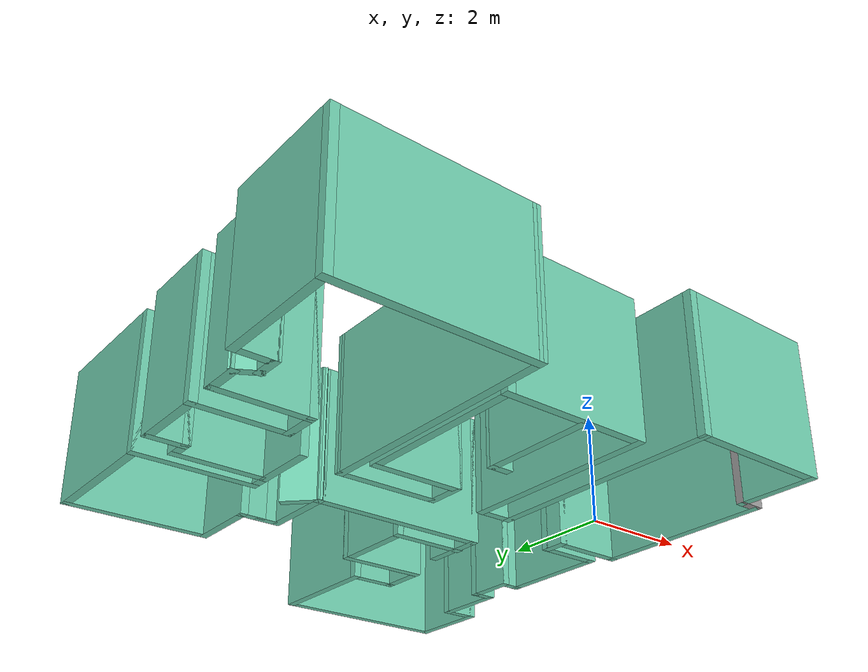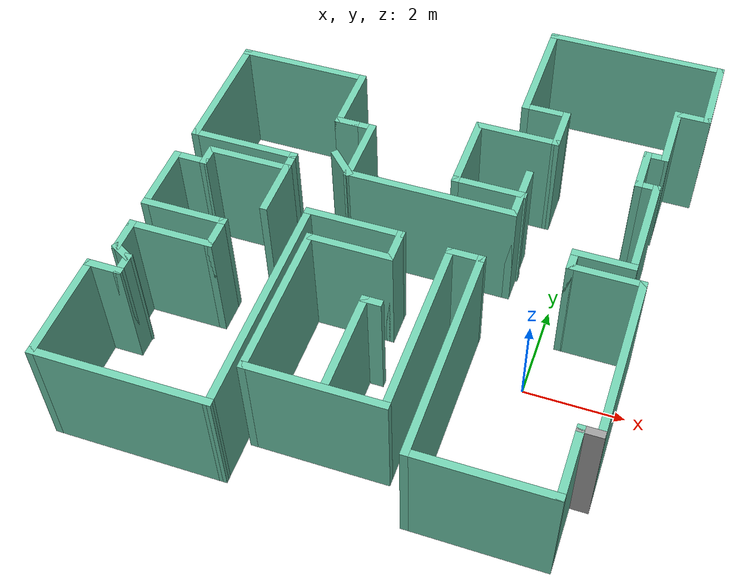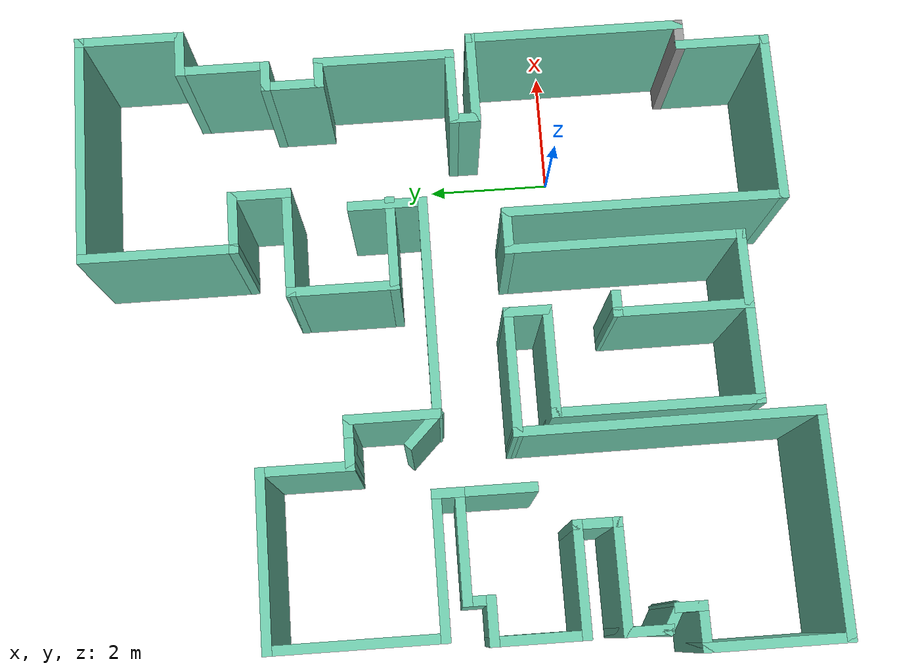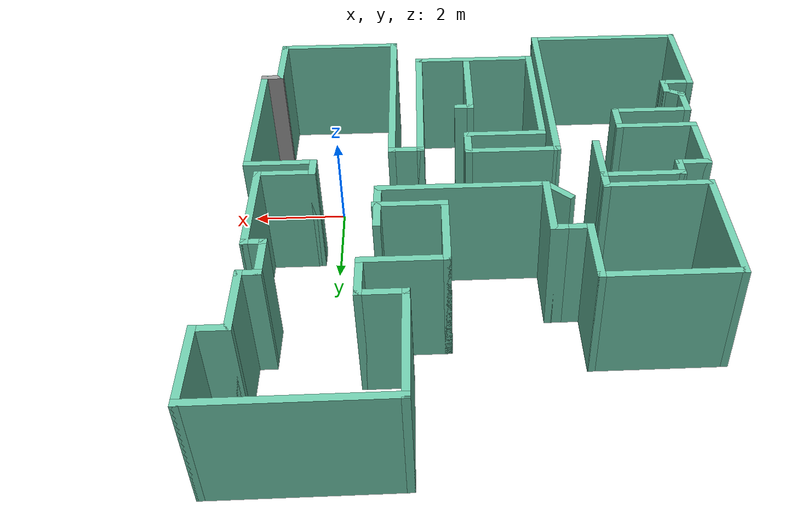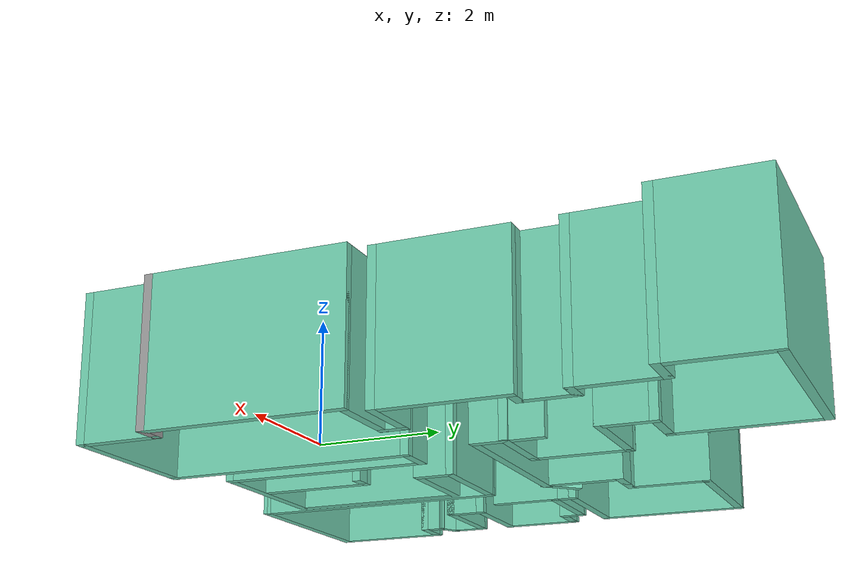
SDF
<?xml version='1.0'?>
<sdf version='1.6'>
  <model name='map_22'>
    <pose frame=''>-2.9551 1.9617 0 0 -0 0</pose>
    <link name='Wall_0'>
      <collision name='Wall_0_Collision'>
        <geometry>
          <box>
            <size>3.5 0.15 2.5</size>
          </box>
        </geometry>
        <pose frame=''>0 0 1.25 0 -0 0</pose>
      </collision>
      <visual name='Wall_0_Visual'>
        <pose frame=''>0 0 1.25 0 -0 0</pose>
        <geometry>
          <box>
            <size>3.5 0.15 2.5</size>
          </box>
        </geometry>
        <material>
          <script>
            <uri>file://media/materials/scripts/gazebo.material</uri>
            <name>Gazebo/Grey</name>
          </script>
          <ambient>0.435294 0.796078 0.67451 1</ambient>
        </material>
        <meta>
          <layer>0</layer>
        </meta>
      </visual>
      <pose frame=''>-3.3677 -5.54294 0 0 -0 3.14159</pose>
    </link>
    <link name='Wall_1'>
      <collision name='Wall_1_Collision'>
        <geometry>
          <box>
            <size>2.25 0.15 2.5</size>
          </box>
        </geometry>
        <pose frame=''>0 0 1.25 0 -0 0</pose>
      </collision>
      <visual name='Wall_1_Visual'>
        <pose frame=''>0 0 1.25 0 -0 0</pose>
        <geometry>
          <box>
            <size>2.25 0.15 2.5</size>
          </box>
        </geometry>
        <material>
          <script>
            <uri>file://media/materials/scripts/gazebo.material</uri>
            <name>Gazebo/Grey</name>
          </script>
          <ambient>0.435294 0.796078 0.67451 1</ambient>
        </material>
        <meta>
          <layer>0</layer>
        </meta>
      </visual>
      <pose frame=''>-5.0427 -4.49294 0 0 -0 1.5708</pose>
    </link>
    <link name='Wall_10'>
      <collision name='Wall_10_Collision'>
        <geometry>
          <box>
            <size>0.75 0.15 2.5</size>
          </box>
        </geometry>
        <pose frame=''>0 0 1.25 0 -0 0</pose>
      </collision>
      <visual name='Wall_10_Visual'>
        <pose frame=''>0 0 1.25 0 -0 0</pose>
        <geometry>
          <box>
            <size>0.75 0.15 2.5</size>
          </box>
        </geometry>
        <material>
          <script>
            <uri>file://media/materials/scripts/gazebo.material</uri>
            <name>Gazebo/Grey</name>
          </script>
          <ambient>0.435294 0.796078 0.67451 1</ambient>
        </material>
        <meta>
          <layer>0</layer>
        </meta>
      </visual>
      <pose frame=''>-4.44581 -0.367941 0 0 -0 0</pose>
    </link>
    <link name='Wall_11'>
      <collision name='Wall_11_Collision'>
        <geometry>
          <box>
            <size>0.5 0.15 2.5</size>
          </box>
        </geometry>
        <pose frame=''>0 0 1.25 0 -0 0</pose>
      </collision>
      <visual name='Wall_11_Visual'>
        <pose frame=''>0 0 1.25 0 -0 0</pose>
        <geometry>
          <box>
            <size>0.5 0.15 2.5</size>
          </box>
        </geometry>
        <material>
          <script>
            <uri>file://media/materials/scripts/gazebo.material</uri>
            <name>Gazebo/Grey</name>
          </script>
          <ambient>0.435294 0.796078 0.67451 1</ambient>
        </material>
        <meta>
          <layer>0</layer>
        </meta>
      </visual>
      <pose frame=''>-4.14581 -0.192941 0 0 -0 1.5708</pose>
    </link>
    <link name='Wall_12'>
      <collision name='Wall_12_Collision'>
        <geometry>
          <box>
            <size>1.75 0.15 2.5</size>
          </box>
        </geometry>
        <pose frame=''>0 0 1.25 0 -0 0</pose>
      </collision>
      <visual name='Wall_12_Visual'>
        <pose frame=''>0 0 1.25 0 -0 0</pose>
        <geometry>
          <box>
            <size>1.75 0.15 2.5</size>
          </box>
        </geometry>
        <material>
          <script>
            <uri>file://media/materials/scripts/gazebo.material</uri>
            <name>Gazebo/Grey</name>
          </script>
          <ambient>0.435294 0.796078 0.67451 1</ambient>
        </material>
        <meta>
          <layer>0</layer>
        </meta>
      </visual>
      <pose frame=''>-3.34581 -0.017941 0 0 -0 0</pose>
    </link>
    <link name='Wall_13'>
      <collision name='Wall_13_Collision'>
        <geometry>
          <box>
            <size>1.25 0.15 2.5</size>
          </box>
        </geometry>
        <pose frame=''>0 0 1.25 0 -0 0</pose>
      </collision>
      <visual name='Wall_13_Visual'>
        <pose frame=''>0 0 1.25 0 -0 0</pose>
        <geometry>
          <box>
            <size>1.25 0.15 2.5</size>
          </box>
        </geometry>
        <material>
          <script>
            <uri>file://media/materials/scripts/gazebo.material</uri>
            <name>Gazebo/Grey</name>
          </script>
          <ambient>0.435294 0.796078 0.67451 1</ambient>
        </material>
        <meta>
          <layer>0</layer>
        </meta>
      </visual>
      <pose frame=''>-2.54581 -0.567941 0 0 -0 -1.5708</pose>
    </link>
    <link name='Wall_15'>
      <collision name='Wall_15_Collision'>
        <geometry>
          <box>
            <size>0.5 0.15 2.5</size>
          </box>
        </geometry>
        <pose frame=''>0 0 1.25 0 -0 0</pose>
      </collision>
      <visual name='Wall_15_Visual'>
        <pose frame=''>0 0 1.25 0 -0 0</pose>
        <geometry>
          <box>
            <size>0.5 0.15 2.5</size>
          </box>
        </geometry>
        <material>
          <script>
            <uri>file://media/materials/scripts/gazebo.material</uri>
            <name>Gazebo/Grey</name>
          </script>
          <ambient>0.435294 0.796078 0.67451 1</ambient>
        </material>
        <meta>
          <layer>0</layer>
        </meta>
      </visual>
      <pose frame=''>-2.54581 0.157059 0 0 -0 1.5708</pose>
    </link>
    <link name='Wall_16'>
      <collision name='Wall_16_Collision'>
        <geometry>
          <box>
            <size>2.25 0.15 2.5</size>
          </box>
        </geometry>
        <pose frame=''>0 0 1.25 0 -0 0</pose>
      </collision>
      <visual name='Wall_16_Visual'>
        <pose frame=''>0 0 1.25 0 -0 0</pose>
        <geometry>
          <box>
            <size>2.25 0.15 2.5</size>
          </box>
        </geometry>
        <material>
          <script>
            <uri>file://media/materials/scripts/gazebo.material</uri>
            <name>Gazebo/Grey</name>
          </script>
          <ambient>0.435294 0.796078 0.67451 1</ambient>
        </material>
        <meta>
          <layer>0</layer>
        </meta>
      </visual>
      <pose frame=''>-3.59581 0.332059 0 0 -0 3.14159</pose>
    </link>
    <link name='Wall_17'>
      <collision name='Wall_17_Collision'>
        <geometry>
          <box>
            <size>2.75 0.15 2.5</size>
          </box>
        </geometry>
        <pose frame=''>0 0 1.25 0 -0 0</pose>
      </collision>
      <visual name='Wall_17_Visual'>
        <pose frame=''>0 0 1.25 0 -0 0</pose>
        <geometry>
          <box>
            <size>2.75 0.15 2.5</size>
          </box>
        </geometry>
        <material>
          <script>
            <uri>file://media/materials/scripts/gazebo.material</uri>
            <name>Gazebo/Grey</name>
          </script>
          <ambient>0.435294 0.796078 0.67451 1</ambient>
        </material>
        <meta>
          <layer>0</layer>
        </meta>
      </visual>
      <pose frame=''>-4.64581 1.63206 0 0 -0 1.5708</pose>
    </link>
    <link name='Wall_18'>
      <collision name='Wall_18_Collision'>
        <geometry>
          <box>
            <size>2.75 0.15 2.5</size>
          </box>
        </geometry>
        <pose frame=''>0 0 1.25 0 -0 0</pose>
      </collision>
      <visual name='Wall_18_Visual'>
        <pose frame=''>0 0 1.25 0 -0 0</pose>
        <geometry>
          <box>
            <size>2.75 0.15 2.5</size>
          </box>
        </geometry>
        <material>
          <script>
            <uri>file://media/materials/scripts/gazebo.material</uri>
            <name>Gazebo/Grey</name>
          </script>
          <ambient>0.435294 0.796078 0.67451 1</ambient>
        </material>
        <meta>
          <layer>0</layer>
        </meta>
      </visual>
      <pose frame=''>-3.34581 2.93206 0 0 -0 0</pose>
    </link>
    <link name='Wall_19'>
      <collision name='Wall_19_Collision'>
        <geometry>
          <box>
            <size>1.5 0.15 2.5</size>
          </box>
        </geometry>
        <pose frame=''>0 0 1.25 0 -0 0</pose>
      </collision>
      <visual name='Wall_19_Visual'>
        <pose frame=''>0 0 1.25 0 -0 0</pose>
        <geometry>
          <box>
            <size>1.5 0.15 2.5</size>
          </box>
        </geometry>
        <material>
          <script>
            <uri>file://media/materials/scripts/gazebo.material</uri>
            <name>Gazebo/Grey</name>
          </script>
          <ambient>0.435294 0.796078 0.67451 1</ambient>
        </material>
        <meta>
          <layer>0</layer>
        </meta>
      </visual>
      <pose frame=''>-2.04581 2.25706 0 0 -0 -1.5708</pose>
    </link>
    <link name='Wall_2'>
      <collision name='Wall_2_Collision'>
        <geometry>
          <box>
            <size>0.75 0.15 2.5</size>
          </box>
        </geometry>
        <pose frame=''>0 0 1.25 0 -0 0</pose>
      </collision>
      <visual name='Wall_2_Visual'>
        <pose frame=''>0 0 1.25 0 -0 0</pose>
        <geometry>
          <box>
            <size>0.75 0.15 2.5</size>
          </box>
        </geometry>
        <material>
          <script>
            <uri>file://media/materials/scripts/gazebo.material</uri>
            <name>Gazebo/Grey</name>
          </script>
          <ambient>0.435294 0.796078 0.67451 1</ambient>
        </material>
        <meta>
          <layer>0</layer>
        </meta>
      </visual>
      <pose frame=''>-4.7427 -3.44294 0 0 -0 0</pose>
    </link>
    <link name='Wall_20'>
      <collision name='Wall_20_Collision'>
        <geometry>
          <box>
            <size>0.5 0.15 2.5</size>
          </box>
        </geometry>
        <pose frame=''>0 0 1.25 0 -0 0</pose>
      </collision>
      <visual name='Wall_20_Visual'>
        <pose frame=''>0 0 1.25 0 -0 0</pose>
        <geometry>
          <box>
            <size>0.5 0.15 2.5</size>
          </box>
        </geometry>
        <material>
          <script>
            <uri>file://media/materials/scripts/gazebo.material</uri>
            <name>Gazebo/Grey</name>
          </script>
          <ambient>0.435294 0.796078 0.67451 1</ambient>
        </material>
        <meta>
          <layer>0</layer>
        </meta>
      </visual>
      <pose frame=''>-1.87081 1.58206 0 0 -0 0</pose>
    </link>
    <link name='Wall_21'>
      <collision name='Wall_21_Collision'>
        <geometry>
          <box>
            <size>0.5 0.15 2.5</size>
          </box>
        </geometry>
        <pose frame=''>0 0 1.25 0 -0 0</pose>
      </collision>
      <visual name='Wall_21_Visual'>
        <pose frame=''>0 0 1.25 0 -0 0</pose>
        <geometry>
          <box>
            <size>0.5 0.15 2.5</size>
          </box>
        </geometry>
        <material>
          <script>
            <uri>file://media/materials/scripts/gazebo.material</uri>
            <name>Gazebo/Grey</name>
          </script>
          <ambient>0.435294 0.796078 0.67451 1</ambient>
        </material>
        <meta>
          <layer>0</layer>
        </meta>
      </visual>
      <pose frame=''>-1.52081 1.58206 0 0 -0 0</pose>
    </link>
    <link name='Wall_22'>
      <collision name='Wall_22_Collision'>
        <geometry>
          <box>
            <size>1.5 0.15 2.5</size>
          </box>
        </geometry>
        <pose frame=''>0 0 1.25 0 -0 0</pose>
      </collision>
      <visual name='Wall_22_Visual'>
        <pose frame=''>0 0 1.25 0 -0 0</pose>
        <geometry>
          <box>
            <size>1.5 0.15 2.5</size>
          </box>
        </geometry>
        <material>
          <script>
            <uri>file://media/materials/scripts/gazebo.material</uri>
            <name>Gazebo/Grey</name>
          </script>
          <ambient>0.435294 0.796078 0.67451 1</ambient>
        </material>
        <meta>
          <layer>0</layer>
        </meta>
      </visual>
      <pose frame=''>-1.34581 0.907059 0 0 -0 -1.5708</pose>
    </link>
    <link name='Wall_23'>
      <collision name='Wall_23_Collision'>
        <geometry>
          <box>
            <size>0.75 0.15 2.5</size>
          </box>
        </geometry>
        <pose frame=''>0 0 1.25 0 -0 0</pose>
      </collision>
      <visual name='Wall_23_Visual'>
        <pose frame=''>0 0 1.25 0 -0 0</pose>
        <geometry>
          <box>
            <size>0.75 0.15 2.5</size>
          </box>
        </geometry>
        <material>
          <script>
            <uri>file://media/materials/scripts/gazebo.material</uri>
            <name>Gazebo/Grey</name>
          </script>
          <ambient>0.435294 0.796078 0.67451 1</ambient>
        </material>
        <meta>
          <layer>0</layer>
        </meta>
      </visual>
      <pose frame=''>-1.55794 0.444191 0 0 -0 2.35619</pose>
    </link>
    <link name='Wall_25'>
      <collision name='Wall_25_Collision'>
        <geometry>
          <box>
            <size>3.5 0.15 2.5</size>
          </box>
        </geometry>
        <pose frame=''>0 0 1.25 0 -0 0</pose>
      </collision>
      <visual name='Wall_25_Visual'>
        <pose frame=''>0 0 1.25 0 -0 0</pose>
        <geometry>
          <box>
            <size>3.5 0.15 2.5</size>
          </box>
        </geometry>
        <material>
          <script>
            <uri>file://media/materials/scripts/gazebo.material</uri>
            <name>Gazebo/Grey</name>
          </script>
          <ambient>0.435294 0.796078 0.67451 1</ambient>
        </material>
        <meta>
          <layer>0</layer>
        </meta>
      </visual>
      <pose frame=''>0.329189 0.232059 0 0 -0 0</pose>
    </link>
    <link name='Wall_26'>
      <collision name='Wall_26_Collision'>
        <geometry>
          <box>
            <size>1.25 0.15 2.5</size>
          </box>
        </geometry>
        <pose frame=''>0 0 1.25 0 -0 0</pose>
      </collision>
      <visual name='Wall_26_Visual'>
        <pose frame=''>0 0 1.25 0 -0 0</pose>
        <geometry>
          <box>
            <size>1.25 0.15 2.5</size>
          </box>
        </geometry>
        <material>
          <script>
            <uri>file://media/materials/scripts/gazebo.material</uri>
            <name>Gazebo/Grey</name>
          </script>
          <ambient>0.435294 0.796078 0.67451 1</ambient>
        </material>
        <meta>
          <layer>0</layer>
        </meta>
      </visual>
      <pose frame=''>2.00419 0.782059 0 0 -0 1.5708</pose>
    </link>
    <link name='Wall_28'>
      <collision name='Wall_28_Collision'>
        <geometry>
          <box>
            <size>1.5 0.15 2.5</size>
          </box>
        </geometry>
        <pose frame=''>0 0 1.25 0 -0 0</pose>
      </collision>
      <visual name='Wall_28_Visual'>
        <pose frame=''>0 0 1.25 0 -0 0</pose>
        <geometry>
          <box>
            <size>1.5 0.15 2.5</size>
          </box>
        </geometry>
        <material>
          <script>
            <uri>file://media/materials/scripts/gazebo.material</uri>
            <name>Gazebo/Grey</name>
          </script>
          <ambient>0.435294 0.796078 0.67451 1</ambient>
        </material>
        <meta>
          <layer>0</layer>
        </meta>
      </visual>
      <pose frame=''>1.3677 0.74318 0 0 -0 3.14159</pose>
    </link>
    <link name='Wall_29'>
      <collision name='Wall_29_Collision'>
        <geometry>
          <box>
            <size>1.75 0.15 2.5</size>
          </box>
        </geometry>
        <pose frame=''>0 0 1.25 0 -0 0</pose>
      </collision>
      <visual name='Wall_29_Visual'>
        <pose frame=''>0 0 1.25 0 -0 0</pose>
        <geometry>
          <box>
            <size>1.75 0.15 2.5</size>
          </box>
        </geometry>
        <material>
          <script>
            <uri>file://media/materials/scripts/gazebo.material</uri>
            <name>Gazebo/Grey</name>
          </script>
          <ambient>0.435294 0.796078 0.67451 1</ambient>
        </material>
        <meta>
          <layer>0</layer>
        </meta>
      </visual>
      <pose frame=''>0.692703 1.54318 0 0 -0 1.5708</pose>
    </link>
    <link name='Wall_3'>
      <collision name='Wall_3_Collision'>
        <geometry>
          <box>
            <size>0.5 0.15 2.5</size>
          </box>
        </geometry>
        <pose frame=''>0 0 1.25 0 -0 0</pose>
      </collision>
      <visual name='Wall_3_Visual'>
        <pose frame=''>0 0 1.25 0 -0 0</pose>
        <geometry>
          <box>
            <size>0.5 0.15 2.5</size>
          </box>
        </geometry>
        <material>
          <script>
            <uri>file://media/materials/scripts/gazebo.material</uri>
            <name>Gazebo/Grey</name>
          </script>
          <ambient>0.435294 0.796078 0.67451 1</ambient>
        </material>
        <meta>
          <layer>0</layer>
        </meta>
      </visual>
      <pose frame=''>-4.4427 -3.26794 0 0 -0 1.5708</pose>
    </link>
    <link name='Wall_30'>
      <collision name='Wall_30_Collision'>
        <geometry>
          <box>
            <size>1.75 0.15 2.5</size>
          </box>
        </geometry>
        <pose frame=''>0 0 1.25 0 -0 0</pose>
      </collision>
      <visual name='Wall_30_Visual'>
        <pose frame=''>0 0 1.25 0 -0 0</pose>
        <geometry>
          <box>
            <size>1.75 0.15 2.5</size>
          </box>
        </geometry>
        <material>
          <script>
            <uri>file://media/materials/scripts/gazebo.material</uri>
            <name>Gazebo/Grey</name>
          </script>
          <ambient>0.435294 0.796078 0.67451 1</ambient>
        </material>
        <meta>
          <layer>0</layer>
        </meta>
      </visual>
      <pose frame=''>1.4927 2.34318 0 0 -0 0</pose>
    </link>
    <link name='Wall_31'>
      <collision name='Wall_31_Collision'>
        <geometry>
          <box>
            <size>1 0.15 2.5</size>
          </box>
        </geometry>
        <pose frame=''>0 0 1.25 0 -0 0</pose>
      </collision>
      <visual name='Wall_31_Visual'>
        <pose frame=''>0 0 1.25 0 -0 0</pose>
        <geometry>
          <box>
            <size>1 0.15 2.5</size>
          </box>
        </geometry>
        <material>
          <script>
            <uri>file://media/materials/scripts/gazebo.material</uri>
            <name>Gazebo/Grey</name>
          </script>
          <ambient>0.435294 0.796078 0.67451 1</ambient>
        </material>
        <meta>
          <layer>0</layer>
        </meta>
      </visual>
      <pose frame=''>2.2927 2.76818 0 0 -0 1.5708</pose>
    </link>
    <link name='Wall_32'>
      <collision name='Wall_32_Collision'>
        <geometry>
          <box>
            <size>1 0.15 2.5</size>
          </box>
        </geometry>
        <pose frame=''>0 0 1.25 0 -0 0</pose>
      </collision>
      <visual name='Wall_32_Visual'>
        <pose frame=''>0 0 1.25 0 -0 0</pose>
        <geometry>
          <box>
            <size>1 0.15 2.5</size>
          </box>
        </geometry>
        <material>
          <script>
            <uri>file://media/materials/scripts/gazebo.material</uri>
            <name>Gazebo/Grey</name>
          </script>
          <ambient>0.435294 0.796078 0.67451 1</ambient>
        </material>
        <meta>
          <layer>0</layer>
        </meta>
      </visual>
      <pose frame=''>1.8677 3.19318 0 0 -0 3.14159</pose>
    </link>
    <link name='Wall_34'>
      <collision name='Wall_34_Collision'>
        <geometry>
          <box>
            <size>2.5 0.15 2.5</size>
          </box>
        </geometry>
        <pose frame=''>0 0 1.25 0 -0 0</pose>
      </collision>
      <visual name='Wall_34_Visual'>
        <pose frame=''>0 0 1.25 0 -0 0</pose>
        <geometry>
          <box>
            <size>2.5 0.15 2.5</size>
          </box>
        </geometry>
        <material>
          <script>
            <uri>file://media/materials/scripts/gazebo.material</uri>
            <name>Gazebo/Grey</name>
          </script>
          <ambient>0.435294 0.796078 0.67451 1</ambient>
        </material>
        <meta>
          <layer>0</layer>
        </meta>
      </visual>
      <pose frame=''>1.4427 4.36818 0 0 -0 1.5708</pose>
    </link>
    <link name='Wall_35'>
      <collision name='Wall_35_Collision'>
        <geometry>
          <box>
            <size>3.75 0.15 2.5</size>
          </box>
        </geometry>
        <pose frame=''>0 0 1.25 0 -0 0</pose>
      </collision>
      <visual name='Wall_35_Visual'>
        <pose frame=''>0 0 1.25 0 -0 0</pose>
        <geometry>
          <box>
            <size>3.75 0.15 2.5</size>
          </box>
        </geometry>
        <material>
          <script>
            <uri>file://media/materials/scripts/gazebo.material</uri>
            <name>Gazebo/Grey</name>
          </script>
          <ambient>0.435294 0.796078 0.67451 1</ambient>
        </material>
        <meta>
          <layer>0</layer>
        </meta>
      </visual>
      <pose frame=''>3.2427 5.54318 0 0 -0 0</pose>
    </link>
    <link name='Wall_36'>
      <collision name='Wall_36_Collision'>
        <geometry>
          <box>
            <size>1.75 0.15 2.5</size>
          </box>
        </geometry>
        <pose frame=''>0 0 1.25 0 -0 0</pose>
      </collision>
      <visual name='Wall_36_Visual'>
        <pose frame=''>0 0 1.25 0 -0 0</pose>
        <geometry>
          <box>
            <size>1.75 0.15 2.5</size>
          </box>
        </geometry>
        <material>
          <script>
            <uri>file://media/materials/scripts/gazebo.material</uri>
            <name>Gazebo/Grey</name>
          </script>
          <ambient>0.435294 0.796078 0.67451 1</ambient>
        </material>
        <meta>
          <layer>0</layer>
        </meta>
      </visual>
      <pose frame=''>5.0427 4.74318 0 0 -0 -1.5708</pose>
    </link>
    <link name='Wall_37'>
      <collision name='Wall_37_Collision'>
        <geometry>
          <box>
            <size>0.75 0.15 2.5</size>
          </box>
        </geometry>
        <pose frame=''>0 0 1.25 0 -0 0</pose>
      </collision>
      <visual name='Wall_37_Visual'>
        <pose frame=''>0 0 1.25 0 -0 0</pose>
        <geometry>
          <box>
            <size>0.75 0.15 2.5</size>
          </box>
        </geometry>
        <material>
          <script>
            <uri>file://media/materials/scripts/gazebo.material</uri>
            <name>Gazebo/Grey</name>
          </script>
          <ambient>0.435294 0.796078 0.67451 1</ambient>
        </material>
        <meta>
          <layer>0</layer>
        </meta>
      </visual>
      <pose frame=''>4.7427 3.94318 0 0 -0 3.14159</pose>
    </link>
    <link name='Wall_38'>
      <collision name='Wall_38_Collision'>
        <geometry>
          <box>
            <size>1.5 0.15 2.5</size>
          </box>
        </geometry>
        <pose frame=''>0 0 1.25 0 -0 0</pose>
      </collision>
      <visual name='Wall_38_Visual'>
        <pose frame=''>0 0 1.25 0 -0 0</pose>
        <geometry>
          <box>
            <size>1.5 0.15 2.5</size>
          </box>
        </geometry>
        <material>
          <script>
            <uri>file://media/materials/scripts/gazebo.material</uri>
            <name>Gazebo/Grey</name>
          </script>
          <ambient>0.435294 0.796078 0.67451 1</ambient>
        </material>
        <meta>
          <layer>0</layer>
        </meta>
      </visual>
      <pose frame=''>4.4427 3.26818 0 0 -0 -1.5708</pose>
    </link>
    <link name='Wall_39'>
      <collision name='Wall_39_Collision'>
        <geometry>
          <box>
            <size>0.5 0.15 2.5</size>
          </box>
        </geometry>
        <pose frame=''>0 0 1.25 0 -0 0</pose>
      </collision>
      <visual name='Wall_39_Visual'>
        <pose frame=''>0 0 1.25 0 -0 0</pose>
        <geometry>
          <box>
            <size>0.5 0.15 2.5</size>
          </box>
        </geometry>
        <material>
          <script>
            <uri>file://media/materials/scripts/gazebo.material</uri>
            <name>Gazebo/Grey</name>
          </script>
          <ambient>0.435294 0.796078 0.67451 1</ambient>
        </material>
        <meta>
          <layer>0</layer>
        </meta>
      </visual>
      <pose frame=''>4.2677 2.59318 0 0 -0 3.14159</pose>
    </link>
    <link name='Wall_4'>
      <collision name='Wall_4_Collision'>
        <geometry>
          <box>
            <size>0.5 0.15 2.5</size>
          </box>
        </geometry>
        <pose frame=''>0 0 1.25 0 -0 0</pose>
      </collision>
      <visual name='Wall_4_Visual'>
        <pose frame=''>0 0 1.25 0 -0 0</pose>
        <geometry>
          <box>
            <size>0.5 0.15 2.5</size>
          </box>
        </geometry>
        <material>
          <script>
            <uri>file://media/materials/scripts/gazebo.material</uri>
            <name>Gazebo/Grey</name>
          </script>
          <ambient>0.435294 0.796078 0.67451 1</ambient>
        </material>
        <meta>
          <layer>0</layer>
        </meta>
      </visual>
      <pose frame=''>-4.59426 -3.00544 0 0 -0 2.61799</pose>
    </link>
    <link name='Wall_40'>
      <collision name='Wall_40_Collision'>
        <geometry>
          <box>
            <size>1 0.15 2.5</size>
          </box>
        </geometry>
        <pose frame=''>0 0 1.25 0 -0 0</pose>
      </collision>
      <visual name='Wall_40_Visual'>
        <pose frame=''>0 0 1.25 0 -0 0</pose>
        <geometry>
          <box>
            <size>1 0.15 2.5</size>
          </box>
        </geometry>
        <material>
          <script>
            <uri>file://media/materials/scripts/gazebo.material</uri>
            <name>Gazebo/Grey</name>
          </script>
          <ambient>0.435294 0.796078 0.67451 1</ambient>
        </material>
        <meta>
          <layer>0</layer>
        </meta>
      </visual>
      <pose frame=''>4.0927 2.16818 0 0 -0 -1.5708</pose>
    </link>
    <link name='Wall_42'>
      <collision name='Wall_42_Collision'>
        <geometry>
          <box>
            <size>0.5 0.15 2.5</size>
          </box>
        </geometry>
        <pose frame=''>0 0 1.25 0 -0 0</pose>
      </collision>
      <visual name='Wall_42_Visual'>
        <pose frame=''>0 0 1.25 0 -0 0</pose>
        <geometry>
          <box>
            <size>0.5 0.15 2.5</size>
          </box>
        </geometry>
        <material>
          <script>
            <uri>file://media/materials/scripts/gazebo.material</uri>
            <name>Gazebo/Grey</name>
          </script>
          <ambient>0.435294 0.796078 0.67451 1</ambient>
        </material>
        <meta>
          <layer>0</layer>
        </meta>
      </visual>
      <pose frame=''>4.2677 1.74318 0 0 -0 0</pose>
    </link>
    <link name='Wall_43'>
      <collision name='Wall_43_Collision'>
        <geometry>
          <box>
            <size>2.25 0.15 2.5</size>
          </box>
        </geometry>
        <pose frame=''>0 0 1.25 0 -0 0</pose>
      </collision>
      <visual name='Wall_43_Visual'>
        <pose frame=''>0 0 1.25 0 -0 0</pose>
        <geometry>
          <box>
            <size>2.25 0.15 2.5</size>
          </box>
        </geometry>
        <material>
          <script>
            <uri>file://media/materials/scripts/gazebo.material</uri>
            <name>Gazebo/Grey</name>
          </script>
          <ambient>0.435294 0.796078 0.67451 1</ambient>
        </material>
        <meta>
          <layer>0</layer>
        </meta>
      </visual>
      <pose frame=''>4.4427 0.69318 0 0 -0 -1.5708</pose>
    </link>
    <link name='Wall_44'>
      <collision name='Wall_44_Collision'>
        <geometry>
          <box>
            <size>1.25 0.15 2.5</size>
          </box>
        </geometry>
        <pose frame=''>0 0 1.25 0 -0 0</pose>
      </collision>
      <visual name='Wall_44_Visual'>
        <pose frame=''>0 0 1.25 0 -0 0</pose>
        <geometry>
          <box>
            <size>1.25 0.15 2.5</size>
          </box>
        </geometry>
        <material>
          <script>
            <uri>file://media/materials/scripts/gazebo.material</uri>
            <name>Gazebo/Grey</name>
          </script>
          <ambient>0.435294 0.796078 0.67451 1</ambient>
        </material>
        <meta>
          <layer>0</layer>
        </meta>
      </visual>
      <pose frame=''>3.8927 -0.35682 0 0 -0 3.14159</pose>
    </link>
    <link name='Wall_45'>
      <collision name='Wall_45_Collision'>
        <geometry>
          <box>
            <size>0.5 0.15 2.5</size>
          </box>
        </geometry>
        <pose frame=''>0 0 1.25 0 -0 0</pose>
      </collision>
      <visual name='Wall_45_Visual'>
        <pose frame=''>0 0 1.25 0 -0 0</pose>
        <geometry>
          <box>
            <size>0.5 0.15 2.5</size>
          </box>
        </geometry>
        <material>
          <script>
            <uri>file://media/materials/scripts/gazebo.material</uri>
            <name>Gazebo/Grey</name>
          </script>
          <ambient>0.435294 0.796078 0.67451 1</ambient>
        </material>
        <meta>
          <layer>0</layer>
        </meta>
      </visual>
      <pose frame=''>3.3427 -0.53182 0 0 -0 -1.5708</pose>
    </link>
    <link name='Wall_46'>
      <collision name='Wall_46_Collision'>
        <geometry>
          <box>
            <size>1.5 0.15 2.5</size>
          </box>
        </geometry>
        <pose frame=''>0 0 1.25 0 -0 0</pose>
      </collision>
      <visual name='Wall_46_Visual'>
        <pose frame=''>0 0 1.25 0 -0 0</pose>
        <geometry>
          <box>
            <size>1.5 0.15 2.5</size>
          </box>
        </geometry>
        <material>
          <script>
            <uri>file://media/materials/scripts/gazebo.material</uri>
            <name>Gazebo/Grey</name>
          </script>
          <ambient>0.435294 0.796078 0.67451 1</ambient>
        </material>
        <meta>
          <layer>0</layer>
        </meta>
      </visual>
      <pose frame=''>4.0177 -0.70682 0 0 -0 0</pose>
    </link>
    <link name='Wall_48'>
      <collision name='Wall_48_Collision'>
        <geometry>
          <box>
            <size>3.5 0.15 2.5</size>
          </box>
        </geometry>
        <pose frame=''>0 0 1.25 0 -0 0</pose>
      </collision>
      <visual name='Wall_48_Visual'>
        <pose frame=''>0 0 1.25 0 -0 0</pose>
        <geometry>
          <box>
            <size>3.5 0.15 2.5</size>
          </box>
        </geometry>
        <material>
          <script>
            <uri>file://media/materials/scripts/gazebo.material</uri>
            <name>Gazebo/Grey</name>
          </script>
          <ambient>0.435294 0.796078 0.67451 1</ambient>
        </material>
        <meta>
          <layer>0</layer>
        </meta>
      </visual>
      <pose frame=''>4.6927 -2.38182 0 0 -0 -1.5708</pose>
    </link>
    <link name='Wall_49'>
      <collision name='Wall_49_Collision'>
        <geometry>
          <box>
            <size>0.5 0.15 2.5</size>
          </box>
        </geometry>
        <pose frame=''>0 0 1.25 0 -0 0</pose>
      </collision>
      <visual name='Wall_49_Visual'>
        <pose frame=''>0 0 1.25 0 -0 0</pose>
        <geometry>
          <box>
            <size>0.5 0.15 2.5</size>
          </box>
        </geometry>
        <material>
          <script>
            <uri>file://media/materials/scripts/gazebo.material</uri>
            <name>Gazebo/Grey</name>
          </script>
          <ambient>1 1 1 1</ambient>
        </material>
        <meta>
          <layer>0</layer>
        </meta>
      </visual>
      <pose frame=''>4.5177 -4.05682 0 0 -0 3.14159</pose>
    </link>
    <link name='Wall_5'>
      <collision name='Wall_5_Collision'>
        <geometry>
          <box>
            <size>0.75 0.15 2.5</size>
          </box>
        </geometry>
        <pose frame=''>0 0 1.25 0 -0 0</pose>
      </collision>
      <visual name='Wall_5_Visual'>
        <pose frame=''>0 0 1.25 0 -0 0</pose>
        <geometry>
          <box>
            <size>0.75 0.15 2.5</size>
          </box>
        </geometry>
        <material>
          <script>
            <uri>file://media/materials/scripts/gazebo.material</uri>
            <name>Gazebo/Grey</name>
          </script>
          <ambient>0.435294 0.796078 0.67451 1</ambient>
        </material>
        <meta>
          <layer>0</layer>
        </meta>
      </visual>
      <pose frame=''>-4.74581 -2.61794 0 0 -0 1.5708</pose>
    </link>
    <link name='Wall_50'>
      <collision name='Wall_50_Collision'>
        <geometry>
          <box>
            <size>1.5 0.15 2.5</size>
          </box>
        </geometry>
        <pose frame=''>0 0 1.25 0 -0 0</pose>
      </collision>
      <visual name='Wall_50_Visual'>
        <pose frame=''>0 0 1.25 0 -0 0</pose>
        <geometry>
          <box>
            <size>1.5 0.15 2.5</size>
          </box>
        </geometry>
        <material>
          <script>
            <uri>file://media/materials/scripts/gazebo.material</uri>
            <name>Gazebo/Grey</name>
          </script>
          <ambient>0.435294 0.796078 0.67451 1</ambient>
        </material>
        <meta>
          <layer>0</layer>
        </meta>
      </visual>
      <pose frame=''>4.3427 -4.73182 0 0 -0 -1.5708</pose>
    </link>
    <link name='Wall_51'>
      <collision name='Wall_51_Collision'>
        <geometry>
          <box>
            <size>2.75 0.15 2.5</size>
          </box>
        </geometry>
        <pose frame=''>0 0 1.25 0 -0 0</pose>
      </collision>
      <visual name='Wall_51_Visual'>
        <pose frame=''>0 0 1.25 0 -0 0</pose>
        <geometry>
          <box>
            <size>2.75 0.15 2.5</size>
          </box>
        </geometry>
        <material>
          <script>
            <uri>file://media/materials/scripts/gazebo.material</uri>
            <name>Gazebo/Grey</name>
          </script>
          <ambient>0.435294 0.796078 0.67451 1</ambient>
        </material>
        <meta>
          <layer>0</layer>
        </meta>
      </visual>
      <pose frame=''>3.0427 -5.40682 0 0 -0 3.14159</pose>
    </link>
    <link name='Wall_52'>
      <collision name='Wall_52_Collision'>
        <geometry>
          <box>
            <size>4.5 0.15 2.5</size>
          </box>
        </geometry>
        <pose frame=''>0 0 1.25 0 -0 0</pose>
      </collision>
      <visual name='Wall_52_Visual'>
        <pose frame=''>0 0 1.25 0 -0 0</pose>
        <geometry>
          <box>
            <size>4.5 0.15 2.5</size>
          </box>
        </geometry>
        <material>
          <script>
            <uri>file://media/materials/scripts/gazebo.material</uri>
            <name>Gazebo/Grey</name>
          </script>
          <ambient>0.435294 0.796078 0.67451 1</ambient>
        </material>
        <meta>
          <layer>0</layer>
        </meta>
      </visual>
      <pose frame=''>1.7427 -3.23182 0 0 -0 1.5708</pose>
    </link>
    <link name='Wall_53'>
      <collision name='Wall_53_Collision'>
        <geometry>
          <box>
            <size>0.75 0.15 2.5</size>
          </box>
        </geometry>
        <pose frame=''>0 0 1.25 0 -0 0</pose>
      </collision>
      <visual name='Wall_53_Visual'>
        <pose frame=''>0 0 1.25 0 -0 0</pose>
        <geometry>
          <box>
            <size>0.75 0.15 2.5</size>
          </box>
        </geometry>
        <material>
          <script>
            <uri>file://media/materials/scripts/gazebo.material</uri>
            <name>Gazebo/Grey</name>
          </script>
          <ambient>0.435294 0.796078 0.67451 1</ambient>
        </material>
        <meta>
          <layer>0</layer>
        </meta>
      </visual>
      <pose frame=''>1.4427 -1.05682 0 0 -0 3.14159</pose>
    </link>
    <link name='Wall_54'>
      <collision name='Wall_54_Collision'>
        <geometry>
          <box>
            <size>3.75 0.15 2.5</size>
          </box>
        </geometry>
        <pose frame=''>0 0 1.25 0 -0 0</pose>
      </collision>
      <visual name='Wall_54_Visual'>
        <pose frame=''>0 0 1.25 0 -0 0</pose>
        <geometry>
          <box>
            <size>3.75 0.15 2.5</size>
          </box>
        </geometry>
        <material>
          <script>
            <uri>file://media/materials/scripts/gazebo.material</uri>
            <name>Gazebo/Grey</name>
          </script>
          <ambient>0.435294 0.796078 0.67451 1</ambient>
        </material>
        <meta>
          <layer>0</layer>
        </meta>
      </visual>
      <pose frame=''>1.1427 -2.85682 0 0 -0 -1.5708</pose>
    </link>
    <link name='Wall_55'>
      <collision name='Wall_55_Collision'>
        <geometry>
          <box>
            <size>2.75 0.15 2.5</size>
          </box>
        </geometry>
        <pose frame=''>0 0 1.25 0 -0 0</pose>
      </collision>
      <visual name='Wall_55_Visual'>
        <pose frame=''>0 0 1.25 0 -0 0</pose>
        <geometry>
          <box>
            <size>2.75 0.15 2.5</size>
          </box>
        </geometry>
        <material>
          <script>
            <uri>file://media/materials/scripts/gazebo.material</uri>
            <name>Gazebo/Grey</name>
          </script>
          <ambient>0.435294 0.796078 0.67451 1</ambient>
        </material>
        <meta>
          <layer>0</layer>
        </meta>
      </visual>
      <pose frame=''>-0.157297 -4.65682 0 0 -0 3.14159</pose>
    </link>
    <link name='Wall_56'>
      <collision name='Wall_56_Collision'>
        <geometry>
          <box>
            <size>3.25 0.15 2.5</size>
          </box>
        </geometry>
        <pose frame=''>0 0 1.25 0 -0 0</pose>
      </collision>
      <visual name='Wall_56_Visual'>
        <pose frame=''>0 0 1.25 0 -0 0</pose>
        <geometry>
          <box>
            <size>3.25 0.15 2.5</size>
          </box>
        </geometry>
        <material>
          <script>
            <uri>file://media/materials/scripts/gazebo.material</uri>
            <name>Gazebo/Grey</name>
          </script>
          <ambient>0.435294 0.796078 0.67451 1</ambient>
        </material>
        <meta>
          <layer>0</layer>
        </meta>
      </visual>
      <pose frame=''>-1.4573 -3.10682 0 0 -0 1.5708</pose>
    </link>
    <link name='Wall_57'>
      <collision name='Wall_57_Collision'>
        <geometry>
          <box>
            <size>1.75 0.15 2.5</size>
          </box>
        </geometry>
        <pose frame=''>0 0 1.25 0 -0 0</pose>
      </collision>
      <visual name='Wall_57_Visual'>
        <pose frame=''>0 0 1.25 0 -0 0</pose>
        <geometry>
          <box>
            <size>1.75 0.15 2.5</size>
          </box>
        </geometry>
        <material>
          <script>
            <uri>file://media/materials/scripts/gazebo.material</uri>
            <name>Gazebo/Grey</name>
          </script>
          <ambient>0.435294 0.796078 0.67451 1</ambient>
        </material>
        <meta>
          <layer>0</layer>
        </meta>
      </visual>
      <pose frame=''>-0.657297 -1.55682 0 0 -0 0</pose>
    </link>
    <link name='Wall_58'>
      <collision name='Wall_58_Collision'>
        <geometry>
          <box>
            <size>0.75 0.15 2.5</size>
          </box>
        </geometry>
        <pose frame=''>0 0 1.25 0 -0 0</pose>
      </collision>
      <visual name='Wall_58_Visual'>
        <pose frame=''>0 0 1.25 0 -0 0</pose>
        <geometry>
          <box>
            <size>0.75 0.15 2.5</size>
          </box>
        </geometry>
        <material>
          <script>
            <uri>file://media/materials/scripts/gazebo.material</uri>
            <name>Gazebo/Grey</name>
          </script>
          <ambient>0.435294 0.796078 0.67451 1</ambient>
        </material>
        <meta>
          <layer>0</layer>
        </meta>
      </visual>
      <pose frame=''>0.142703 -1.25682 0 0 -0 1.5708</pose>
    </link>
    <link name='Wall_59'>
      <collision name='Wall_59_Collision'>
        <geometry>
          <box>
            <size>2 0.15 2.5</size>
          </box>
        </geometry>
        <pose frame=''>0 0 1.25 0 -0 0</pose>
      </collision>
      <visual name='Wall_59_Visual'>
        <pose frame=''>0 0 1.25 0 -0 0</pose>
        <geometry>
          <box>
            <size>2 0.15 2.5</size>
          </box>
        </geometry>
        <material>
          <script>
            <uri>file://media/materials/scripts/gazebo.material</uri>
            <name>Gazebo/Grey</name>
          </script>
          <ambient>0.435294 0.796078 0.67451 1</ambient>
        </material>
        <meta>
          <layer>0</layer>
        </meta>
      </visual>
      <pose frame=''>-0.782297 -0.95682 0 0 -0 3.14159</pose>
    </link>
    <link name='Wall_6'>
      <collision name='Wall_6_Collision'>
        <geometry>
          <box>
            <size>1.75 0.15 2.5</size>
          </box>
        </geometry>
        <pose frame=''>0 0 1.25 0 -0 0</pose>
      </collision>
      <visual name='Wall_6_Visual'>
        <pose frame=''>0 0 1.25 0 -0 0</pose>
        <geometry>
          <box>
            <size>1.75 0.15 2.5</size>
          </box>
        </geometry>
        <material>
          <script>
            <uri>file://media/materials/scripts/gazebo.material</uri>
            <name>Gazebo/Grey</name>
          </script>
          <ambient>0.435294 0.796078 0.67451 1</ambient>
        </material>
        <meta>
          <layer>0</layer>
        </meta>
      </visual>
      <pose frame=''>-3.94581 -2.31794 0 0 -0 0</pose>
    </link>
    <link name='Wall_60'>
      <collision name='Wall_60_Collision'>
        <geometry>
          <box>
            <size>4.73614 0.15 2.5</size>
          </box>
        </geometry>
        <pose frame=''>0 0 1.25 0 -0 0</pose>
      </collision>
      <visual name='Wall_60_Visual'>
        <pose frame=''>0 0 1.25 0 -0 0</pose>
        <geometry>
          <box>
            <size>4.73614 0.15 2.5</size>
          </box>
        </geometry>
        <material>
          <script>
            <uri>file://media/materials/scripts/gazebo.material</uri>
            <name>Gazebo/Grey</name>
          </script>
          <ambient>0.435294 0.796078 0.67451 1</ambient>
        </material>
        <meta>
          <layer>0</layer>
        </meta>
      </visual>
      <pose frame=''>-1.7 -3.24988 0 0 -0 -1.56761</pose>
    </link>
    <link name='Wall_62'>
      <collision name='Wall_62_Collision'>
        <geometry>
          <box>
            <size>2.17401 0.15 2.5</size>
          </box>
        </geometry>
        <pose frame=''>0 0 1.25 0 -0 0</pose>
      </collision>
      <visual name='Wall_62_Visual'>
        <pose frame=''>0 0 1.25 0 -0 0</pose>
        <geometry>
          <box>
            <size>2.17401 0.15 2.5</size>
          </box>
        </geometry>
        <material>
          <script>
            <uri>file://media/materials/scripts/gazebo.material</uri>
            <name>Gazebo/Grey</name>
          </script>
          <ambient>0.435294 0.796078 0.67451 1</ambient>
        </material>
        <meta>
          <layer>0</layer>
        </meta>
      </visual>
      <pose frame=''>0.028032 -3.64444 0 0 -0 1.57073</pose>
    </link>
    <link name='Wall_63'>
      <collision name='Wall_63_Collision'>
        <geometry>
          <box>
            <size>0.422 0.15 2.5</size>
          </box>
        </geometry>
        <pose frame=''>0 0 1.25 0 -0 0</pose>
      </collision>
      <visual name='Wall_63_Visual'>
        <pose frame=''>0 0 1.25 0 -0 0</pose>
        <geometry>
          <box>
            <size>0.422 0.15 2.5</size>
          </box>
        </geometry>
        <material>
          <script>
            <uri>file://media/materials/scripts/gazebo.material</uri>
            <name>Gazebo/Grey</name>
          </script>
          <ambient>0.435294 0.796078 0.67451 1</ambient>
        </material>
        <meta>
          <layer>0</layer>
        </meta>
      </visual>
      <pose frame=''>0.1641 -2.6327 0 0 -0 0</pose>
    </link>
    <link name='Wall_7'>
      <collision name='Wall_7_Collision'>
        <geometry>
          <box>
            <size>0.75 0.15 2.5</size>
          </box>
        </geometry>
        <pose frame=''>0 0 1.25 0 -0 0</pose>
      </collision>
      <visual name='Wall_7_Visual'>
        <pose frame=''>0 0 1.25 0 -0 0</pose>
        <geometry>
          <box>
            <size>0.75 0.15 2.5</size>
          </box>
        </geometry>
        <material>
          <script>
            <uri>file://media/materials/scripts/gazebo.material</uri>
            <name>Gazebo/Grey</name>
          </script>
          <ambient>0.435294 0.796078 0.67451 1</ambient>
        </material>
        <meta>
          <layer>0</layer>
        </meta>
      </visual>
      <pose frame=''>-3.14581 -2.01794 0 0 -0 1.5708</pose>
    </link>
    <link name='Wall_8'>
      <collision name='Wall_8_Collision'>
        <geometry>
          <box>
            <size>1.75 0.15 2.5</size>
          </box>
        </geometry>
        <pose frame=''>0 0 1.25 0 -0 0</pose>
      </collision>
      <visual name='Wall_8_Visual'>
        <pose frame=''>0 0 1.25 0 -0 0</pose>
        <geometry>
          <box>
            <size>1.75 0.15 2.5</size>
          </box>
        </geometry>
        <material>
          <script>
            <uri>file://media/materials/scripts/gazebo.material</uri>
            <name>Gazebo/Grey</name>
          </script>
          <ambient>0.435294 0.796078 0.67451 1</ambient>
        </material>
        <meta>
          <layer>0</layer>
        </meta>
      </visual>
      <pose frame=''>-3.94581 -1.71794 0 0 -0 3.14159</pose>
    </link>
    <link name='Wall_9'>
      <collision name='Wall_9_Collision'>
        <geometry>
          <box>
            <size>1.5 0.15 2.5</size>
          </box>
        </geometry>
        <pose frame=''>0 0 1.25 0 -0 0</pose>
      </collision>
      <visual name='Wall_9_Visual'>
        <pose frame=''>0 0 1.25 0 -0 0</pose>
        <geometry>
          <box>
            <size>1.5 0.15 2.5</size>
          </box>
        </geometry>
        <material>
          <script>
            <uri>file://media/materials/scripts/gazebo.material</uri>
            <name>Gazebo/Grey</name>
          </script>
          <ambient>0.435294 0.796078 0.67451 1</ambient>
        </material>
        <meta>
          <layer>0</layer>
        </meta>
      </visual>
      <pose frame=''>-4.74581 -1.04294 0 0 -0 1.5708</pose>
    </link>
    <static>1</static>
  </model>
</sdf>
